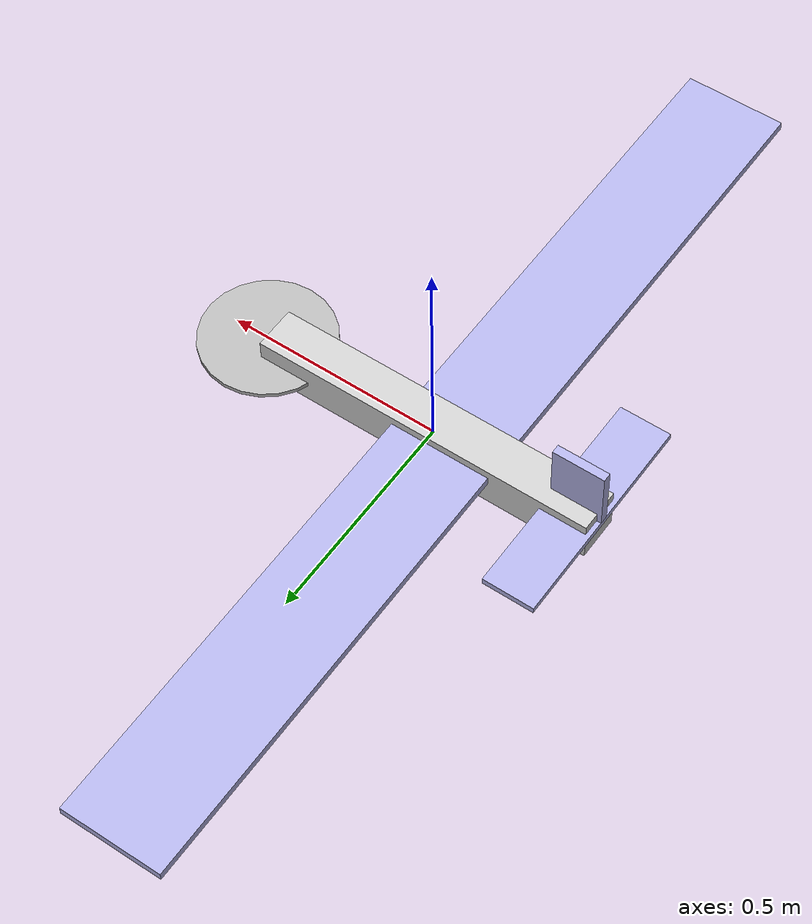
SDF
<?xml version="1.0"?>
<sdf version="1.6">
  <model name="valencia_fixed_wing">
    <static>false</static>

    <!-- Fuselage -->
    <link name="fuselage">
      <pose>0 0 0 0 0 0</pose>

      <inertial>
        <mass>2.5</mass>  <!-- Table 2: 2.5 kg -->
        <inertia>
          <!-- Estimated from wingspan=2.20m, chord=0.235m, mass=2.5kg -->
          <ixx>0.08</ixx>
          <ixy>0</ixy>
          <ixz>0.004</ixz>
          <iyy>0.12</iyy>
          <iyz>0</iyz>
          <izz>0.16</izz>
        </inertia>
      </inertial>

      <!-- Visual: simplified fuselage -->
      <visual name="fuselage_visual">
        <geometry>
          <box><size>0.8 0.1 0.1</size></box>
        </geometry>
        <material>
          <ambient>0.8 0.8 0.8 1</ambient>
        </material>
      </visual>

      <!-- Visual: wings -->
      <visual name="wing_visual">
        <pose>-0.05 0 0.02 0 0 0</pose>
        <geometry>
          <box><size>0.235 2.20 0.02</size></box>  <!-- chord x wingspan x thickness -->
        </geometry>
        <material>
          <ambient>0.7 0.7 0.9 1</ambient>
        </material>
      </visual>

      <!-- Visual: vertical stabilizer -->
      <visual name="vtail_visual">
        <pose>-0.35 0 0.1 0 0 0</pose>
        <geometry>
          <box><size>0.12 0.02 0.15</size></box>
        </geometry>
        <material>
          <ambient>0.7 0.7 0.9 1</ambient>
        </material>
      </visual>

      <!-- Visual: horizontal stabilizer -->
      <visual name="htail_visual">
        <pose>-0.35 0 0.02 0 0 0</pose>
        <geometry>
          <box><size>0.12 0.5 0.015</size></box>
        </geometry>
        <material>
          <ambient>0.7 0.7 0.9 1</ambient>
        </material>
      </visual>

      <!-- Collision: simplified bounding box -->
      <collision name="fuselage_collision">
        <geometry>
          <box><size>0.8 2.20 0.15</size></box>
        </geometry>
      </collision>
    </link>

    <!-- Propeller link (for thrust) -->
    <link name="propeller">
      <pose>0.42 0 0 0 0 0</pose>
      <inertial>
        <mass>0.05</mass>
        <inertia>
          <ixx>0.0001</ixx><iyy>0.0001</iyy><izz>0.0001</izz>
          <ixy>0</ixy><ixz>0</ixz><iyz>0</iyz>
        </inertia>
      </inertial>
      <visual name="prop_visual">
        <geometry>
          <cylinder><radius>0.15</radius><length>0.01</length></cylinder>
        </geometry>
      </visual>
    </link>

    <joint name="propeller_joint" type="revolute">
      <parent>fuselage</parent>
      <child>propeller</child>
      <axis><xyz>1 0 0</xyz></axis>
    </joint>

    <!--
      LiftDrag Plugin: Wing aerodynamics
      Coefficients from Valencia et al. (2025) Table 3 (CFD/OpenFOAM).
    -->
    <plugin name="wing_liftdrag" filename="libLiftDragPlugin.so">
      <a0>0.05236</a0>              <!-- alpha_0: zero-lift AoA [rad] -->
      <cla>3.50141</cla>            <!-- C_La: lift curve slope pre-stall [1/rad] -->
      <cda>0.63662</cda>            <!-- C_Da: drag curve slope pre-stall [1/rad^2] -->
      <cma>-0.2040</cma>            <!-- C_Ma: moment curve slope pre-stall [1/rad] -->
      <alpha_stall>0.26180</alpha_stall>  <!-- stall angle [rad] (~15 deg) -->
      <cla_stall>-1.1459</cla_stall>     <!-- C_La_stall: post-stall lift slope -->
      <cda_stall>2.29183</cda_stall>     <!-- C_Da_stall: post-stall drag slope -->
      <cma_stall>-0.1313</cma_stall>     <!-- C_Ma_stall: post-stall moment slope -->
      <cp>-0.05 0 0.02</cp>              <!-- center of pressure (on wing) -->
      <area>0.3997</area>                <!-- Table 2: wing reference area [m^2] -->
      <air_density>0.83</air_density>    <!-- Antisana altitude ~4500m -->
      <forward>1 0 0</forward>
      <upward>0 0 1</upward>
      <link_name>fuselage</link_name>
    </plugin>

    <!--
      ArduPilot plugin for SITL integration.
      Connects Gazebo to ArduPilot via shared memory or UDP.
    -->
    <plugin name="ardupilot_plugin" filename="libArduPilotPlugin.so">
      <fdm_addr>127.0.0.1</fdm_addr>
      <fdm_port_in>9002</fdm_port_in>
      <fdm_port_out>9003</fdm_port_out>
      <modelXYZToAirplaneXForwardZDown>0 0 0 3.141593 0 0</modelXYZToAirplaneXForwardZDown>
      <gazeboXYZToNED>0 0 0 3.141593 0 1.5707963</gazeboXYZToNED>
      <imuName>fuselage::imu_sensor</imuName>

      <!-- Control channels -->
      <control channel="0">
        <jointName>propeller_joint</jointName>
        <type>VELOCITY</type>
        <multiplier>838</multiplier>
        <offset>0</offset>
      </control>
    </plugin>

  </model>
</sdf>
